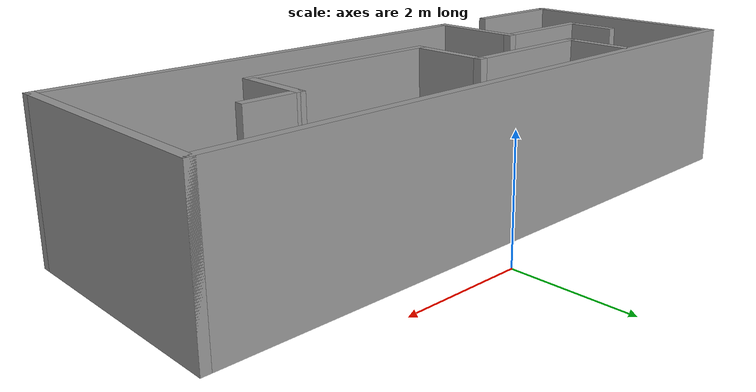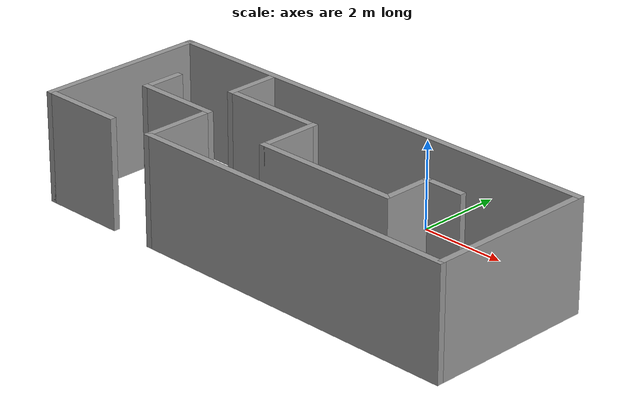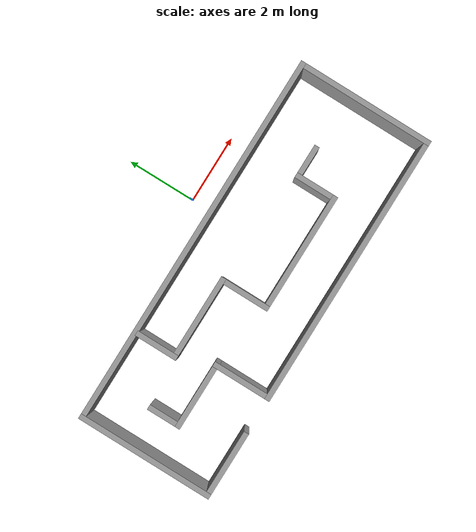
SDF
<?xml version='1.0'?>
<sdf version='1.7'>
  <model name='myworld'>
    <pose>-0.945 -2.2975 0 0 -0 0</pose>
    <link name='Wall_0'>
      <collision name='Wall_0_Collision'>
        <geometry>
          <box>
            <size>4 0.15 2.5</size>
          </box>
        </geometry>
        <pose>0 0 1.25 0 -0 0</pose>
      </collision>
      <visual name='Wall_0_Visual'>
        <pose>0 0 1.25 0 -0 0</pose>
        <geometry>
          <box>
            <size>4 0.15 2.5</size>
          </box>
        </geometry>
        <material>
          <script>
            <uri>file://media/materials/scripts/gazebo.material</uri>
            <name>Gazebo/Grey</name>
          </script>
          <ambient>1 1 1 1</ambient>
        </material>
        <meta>
          <layer>0</layer>
        </meta>
      </visual>
      <pose>-5.425 -0.2975 0 0 -0 -1.5708</pose>
    </link>
    <link name='Wall_1'>
      <collision name='Wall_1_Collision'>
        <geometry>
          <box>
            <size>2 0.15 2.5</size>
          </box>
        </geometry>
        <pose>0 0 1.25 0 -0 0</pose>
      </collision>
      <visual name='Wall_1_Visual'>
        <pose>0 0 1.25 0 -0 0</pose>
        <geometry>
          <box>
            <size>2 0.15 2.5</size>
          </box>
        </geometry>
        <material>
          <script>
            <uri>file://media/materials/scripts/gazebo.material</uri>
            <name>Gazebo/Grey</name>
          </script>
          <ambient>1 1 1 1</ambient>
        </material>
        <meta>
          <layer>0</layer>
        </meta>
      </visual>
      <pose>-4.5 -2.2225 0 0 -0 0</pose>
    </link>
    <link name='Wall_11'>
      <collision name='Wall_11_Collision'>
        <geometry>
          <box>
            <size>1.25 0.15 2.5</size>
          </box>
        </geometry>
        <pose>0 0 1.25 0 -0 0</pose>
      </collision>
      <visual name='Wall_11_Visual'>
        <pose>0 0 1.25 0 -0 0</pose>
        <geometry>
          <box>
            <size>1.25 0.15 2.5</size>
          </box>
        </geometry>
        <material>
          <script>
            <uri>file://media/materials/scripts/gazebo.material</uri>
            <name>Gazebo/Grey</name>
          </script>
          <ambient>1 1 1 1</ambient>
        </material>
        <meta>
          <layer>0</layer>
        </meta>
      </visual>
      <pose>-2.80769 0.968268 0 0 -0 -1.5708</pose>
    </link>
    <link name='Wall_12'>
      <collision name='Wall_12_Collision'>
        <geometry>
          <box>
            <size>2.5 0.15 2.5</size>
          </box>
        </geometry>
        <pose>0 0 1.25 0 -0 0</pose>
      </collision>
      <visual name='Wall_12_Visual'>
        <pose>0 0 1.25 0 -0 0</pose>
        <geometry>
          <box>
            <size>2.5 0.15 2.5</size>
          </box>
        </geometry>
        <material>
          <script>
            <uri>file://media/materials/scripts/gazebo.material</uri>
            <name>Gazebo/Grey</name>
          </script>
          <ambient>1 1 1 1</ambient>
        </material>
        <meta>
          <layer>0</layer>
        </meta>
      </visual>
      <pose>-1.63269 0.418268 0 0 -0 0</pose>
    </link>
    <link name='Wall_13'>
      <collision name='Wall_13_Collision'>
        <geometry>
          <box>
            <size>1.5 0.15 2.5</size>
          </box>
        </geometry>
        <pose>0 0 1.25 0 -0 0</pose>
      </collision>
      <visual name='Wall_13_Visual'>
        <pose>0 0 1.25 0 -0 0</pose>
        <geometry>
          <box>
            <size>1.5 0.15 2.5</size>
          </box>
        </geometry>
        <material>
          <script>
            <uri>file://media/materials/scripts/gazebo.material</uri>
            <name>Gazebo/Grey</name>
          </script>
          <ambient>1 1 1 1</ambient>
        </material>
        <meta>
          <layer>0</layer>
        </meta>
      </visual>
      <pose>-0.457694 -0.256732 0 0 -0 -1.5708</pose>
    </link>
    <link name='Wall_14'>
      <collision name='Wall_14_Collision'>
        <geometry>
          <box>
            <size>3.5 0.15 2.5</size>
          </box>
        </geometry>
        <pose>0 0 1.25 0 -0 0</pose>
      </collision>
      <visual name='Wall_14_Visual'>
        <pose>0 0 1.25 0 -0 0</pose>
        <geometry>
          <box>
            <size>3.5 0.15 2.5</size>
          </box>
        </geometry>
        <material>
          <script>
            <uri>file://media/materials/scripts/gazebo.material</uri>
            <name>Gazebo/Grey</name>
          </script>
          <ambient>1 1 1 1</ambient>
        </material>
        <meta>
          <layer>0</layer>
        </meta>
      </visual>
      <pose>1.21731 -0.931732 0 0 -0 0</pose>
    </link>
    <link name='Wall_15'>
      <collision name='Wall_15_Collision'>
        <geometry>
          <box>
            <size>1.25 0.15 2.5</size>
          </box>
        </geometry>
        <pose>0 0 1.25 0 -0 0</pose>
      </collision>
      <visual name='Wall_15_Visual'>
        <pose>0 0 1.25 0 -0 0</pose>
        <geometry>
          <box>
            <size>1.25 0.15 2.5</size>
          </box>
        </geometry>
        <material>
          <script>
            <uri>file://media/materials/scripts/gazebo.material</uri>
            <name>Gazebo/Grey</name>
          </script>
          <ambient>1 1 1 1</ambient>
        </material>
        <meta>
          <layer>0</layer>
        </meta>
      </visual>
      <pose>2.89231 -0.381732 0 0 -0 1.5708</pose>
    </link>
    <link name='Wall_16'>
      <collision name='Wall_16_Collision'>
        <geometry>
          <box>
            <size>1 0.15 2.5</size>
          </box>
        </geometry>
        <pose>0 0 1.25 0 -0 0</pose>
      </collision>
      <visual name='Wall_16_Visual'>
        <pose>0 0 1.25 0 -0 0</pose>
        <geometry>
          <box>
            <size>1 0.15 2.5</size>
          </box>
        </geometry>
        <material>
          <script>
            <uri>file://media/materials/scripts/gazebo.material</uri>
            <name>Gazebo/Grey</name>
          </script>
          <ambient>1 1 1 1</ambient>
        </material>
        <meta>
          <layer>0</layer>
        </meta>
      </visual>
      <pose>3.31731 0.168268 0 0 -0 0</pose>
    </link>
    <link name='Wall_4'>
      <collision name='Wall_4_Collision'>
        <geometry>
          <box>
            <size>11 0.15 2.5</size>
          </box>
        </geometry>
        <pose>0 0 1.25 0 -0 0</pose>
      </collision>
      <visual name='Wall_4_Visual'>
        <pose>0 0 1.25 0 -0 0</pose>
        <geometry>
          <box>
            <size>11 0.15 2.5</size>
          </box>
        </geometry>
        <material>
          <script>
            <uri>file://media/materials/scripts/gazebo.material</uri>
            <name>Gazebo/Grey</name>
          </script>
          <ambient>1 1 1 1</ambient>
        </material>
        <meta>
          <layer>0</layer>
        </meta>
      </visual>
      <pose>-0 1.6275 0 0 -0 0</pose>
    </link>
    <link name='Wall_5'>
      <collision name='Wall_5_Collision'>
        <geometry>
          <box>
            <size>4 0.15 2.5</size>
          </box>
        </geometry>
        <pose>0 0 1.25 0 -0 0</pose>
      </collision>
      <visual name='Wall_5_Visual'>
        <pose>0 0 1.25 0 -0 0</pose>
        <geometry>
          <box>
            <size>4 0.15 2.5</size>
          </box>
        </geometry>
        <material>
          <script>
            <uri>file://media/materials/scripts/gazebo.material</uri>
            <name>Gazebo/Grey</name>
          </script>
          <ambient>1 1 1 1</ambient>
        </material>
        <meta>
          <layer>0</layer>
        </meta>
      </visual>
      <pose>5.425 -0.2975 0 0 -0 -1.5708</pose>
    </link>
    <link name='Wall_6'>
      <collision name='Wall_6_Collision'>
        <geometry>
          <box>
            <size>8 0.15 2.5</size>
          </box>
        </geometry>
        <pose>0 0 1.25 0 -0 0</pose>
      </collision>
      <visual name='Wall_6_Visual'>
        <pose>0 0 1.25 0 -0 0</pose>
        <geometry>
          <box>
            <size>8 0.15 2.5</size>
          </box>
        </geometry>
        <material>
          <script>
            <uri>file://media/materials/scripts/gazebo.material</uri>
            <name>Gazebo/Grey</name>
          </script>
          <ambient>1 1 1 1</ambient>
        </material>
        <meta>
          <layer>0</layer>
        </meta>
      </visual>
      <pose>1.5 -2.2225 0 0 -0 3.14159</pose>
    </link>
    <link name='Wall_7'>
      <collision name='Wall_7_Collision'>
        <geometry>
          <box>
            <size>1.75 0.15 2.5</size>
          </box>
        </geometry>
        <pose>0 0 1.25 0 -0 0</pose>
      </collision>
      <visual name='Wall_7_Visual'>
        <pose>0 0 1.25 0 -0 0</pose>
        <geometry>
          <box>
            <size>1.75 0.15 2.5</size>
          </box>
        </geometry>
        <material>
          <script>
            <uri>file://media/materials/scripts/gazebo.material</uri>
            <name>Gazebo/Grey</name>
          </script>
          <ambient>1 1 1 1</ambient>
        </material>
        <meta>
          <layer>0</layer>
        </meta>
      </visual>
      <pose>-2.425 -1.4225 0 0 -0 1.5708</pose>
    </link>
    <link name='Wall_8'>
      <collision name='Wall_8_Collision'>
        <geometry>
          <box>
            <size>2 0.15 2.5</size>
          </box>
        </geometry>
        <pose>0 0 1.25 0 -0 0</pose>
      </collision>
      <visual name='Wall_8_Visual'>
        <pose>0 0 1.25 0 -0 0</pose>
        <geometry>
          <box>
            <size>2 0.15 2.5</size>
          </box>
        </geometry>
        <material>
          <script>
            <uri>file://media/materials/scripts/gazebo.material</uri>
            <name>Gazebo/Grey</name>
          </script>
          <ambient>1 1 1 1</ambient>
        </material>
        <meta>
          <layer>0</layer>
        </meta>
      </visual>
      <pose>-3.35 -0.6225 0 0 -0 3.14159</pose>
    </link>
    <link name='Wall_9'>
      <collision name='Wall_9_Collision'>
        <geometry>
          <box>
            <size>1 0.15 2.5</size>
          </box>
        </geometry>
        <pose>0 0 1.25 0 -0 0</pose>
      </collision>
      <visual name='Wall_9_Visual'>
        <pose>0 0 1.25 0 -0 0</pose>
        <geometry>
          <box>
            <size>1 0.15 2.5</size>
          </box>
        </geometry>
        <material>
          <script>
            <uri>file://media/materials/scripts/gazebo.material</uri>
            <name>Gazebo/Grey</name>
          </script>
          <ambient>1 1 1 1</ambient>
        </material>
        <meta>
          <layer>0</layer>
        </meta>
      </visual>
      <pose>-4.275 -0.1975 0 0 -0 1.5708</pose>
    </link>
    <static>1</static>
  </model>
</sdf>
